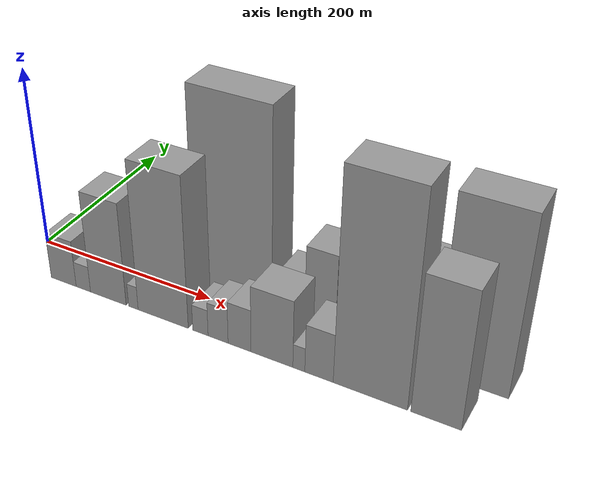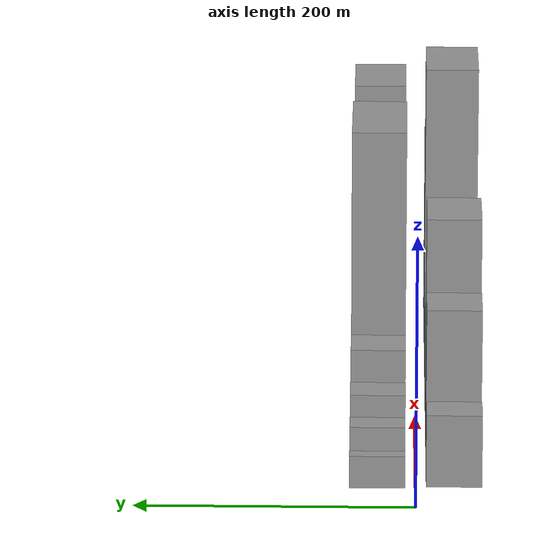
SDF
<sdf version="1.6">
 <world name="default">
  <scene>
   <sky><clouds><speed>12</speed></clouds></sky>
   <ambient>0.4 0.4 0.4 1</ambient>
   <background>0.7 0.7 0.7 1</background>
   <shadows>1</shadows>
  </scene>
  <gravity>0 0 -9.8066</gravity>
  <magnetic_field>6e-06 2.3e-05 -4.2e-05</magnetic_field>
  <physics default="0" name="default_physics" type="ode">
   <ode>
    <solver>
     <type>quick</type>
     <iters>10</iters>
     <sor>1.0</sor>
     <use_dynamic_moi_rescaling>0</use_dynamic_moi_rescaling>
    </solver>
    <constraints>
     <cfm>0</cfm>
     <erp>0.2</erp>
     <contact_max_correcting_vel>100</contact_max_correcting_vel>
     <contact_surface_layer>0.001</contact_surface_layer>
    </constraints>
   </ode>
   <max_step_size>0.004</max_step_size>
   <real_time_factor>1</real_time_factor>
   <real_time_update_rate>250</real_time_update_rate>
  </physics>
  <light name="sun" type="directional">
   <pose>0 0 10 0 0 0</pose>
   <diffuse>0.8 0.8 0.8 1</diffuse>
   <specular>0.2 0.2 0.2 1</specular>
   <attenuation>
    <range>1000</range>
    <constant>0.9</constant>
    <linear>0.01</linear>
    <quadratic>0.001</quadratic>
   </attenuation>
   <direction>-0.5 0.1 -0.9</direction>
  </light>
  <model name="building_1">
   <static>1</static>
   <pose>45.8817 27.5000 0 0.000000 0.000000 1.570796</pose>
   <link name="link">
    <pose>0 0 12.00 0 0 0</pose>
    <collision name="collision"><geometry><box><size>40.0000 11.7634 24.0000</size></box></geometry></collision>
    <visual name="visual">
     <cast_shadows>0</cast_shadows>
     <geometry><box><size>40.0000 11.7634 24.0000</size></box></geometry>
     <material>
      <script>
       <uri>model://grey_wall/materials/scripts</uri>
       <uri>model://grey_wall/materials/textures</uri>
       <name>vrc/grey_wall</name>
      </script>
     </material>
    </visual>
   </link>
  </model>
  <model name="building_2">
   <static>1</static>
   <pose>70.8837 27.5000 0 0.000000 0.000000 1.570796</pose>
   <link name="link">
    <pose>0 0 19.50 0 0 0</pose>
    <collision name="collision"><geometry><box><size>40.0000 22.2405 39.0000</size></box></geometry></collision>
    <visual name="visual">
     <cast_shadows>0</cast_shadows>
     <geometry><box><size>40.0000 22.2405 39.0000</size></box></geometry>
     <material>
      <script>
       <uri>model://grey_wall/materials/scripts</uri>
       <uri>model://grey_wall/materials/textures</uri>
       <name>vrc/grey_wall</name>
      </script>
     </material>
    </visual>
   </link>
  </model>
  <model name="building_3">
   <static>1</static>
   <pose>101.7280 27.5000 0 0.000000 0.000000 1.570796</pose>
   <link name="link">
    <pose>0 0 27.00 0 0 0</pose>
    <collision name="collision"><geometry><box><size>40.0000 29.4482 54.0000</size></box></geometry></collision>
    <visual name="visual">
     <cast_shadows>0</cast_shadows>
     <geometry><box><size>40.0000 29.4482 54.0000</size></box></geometry>
     <material>
      <script>
       <uri>model://grey_wall/materials/scripts</uri>
       <uri>model://grey_wall/materials/textures</uri>
       <name>vrc/grey_wall</name>
      </script>
     </material>
    </visual>
   </link>
  </model>
  <model name="building_4">
   <static>1</static>
   <pose>126.2470 27.5000 0 0.000000 0.000000 1.570796</pose>
   <link name="link">
    <pose>0 0 18.00 0 0 0</pose>
    <collision name="collision"><geometry><box><size>40.0000 19.5898 36.0000</size></box></geometry></collision>
    <visual name="visual">
     <cast_shadows>0</cast_shadows>
     <geometry><box><size>40.0000 19.5898 36.0000</size></box></geometry>
     <material>
      <script>
       <uri>model://grey_wall/materials/scripts</uri>
       <uri>model://grey_wall/materials/textures</uri>
       <name>vrc/grey_wall</name>
      </script>
     </material>
    </visual>
   </link>
  </model>
  <model name="building_5">
   <static>1</static>
   <pose>154.2567 27.5000 0 0.000000 0.000000 1.570796</pose>
   <link name="link">
    <pose>0 0 36.00 0 0 0</pose>
    <collision name="collision"><geometry><box><size>40.0000 36.4296 72.0000</size></box></geometry></collision>
    <visual name="visual">
     <cast_shadows>0</cast_shadows>
     <geometry><box><size>40.0000 36.4296 72.0000</size></box></geometry>
     <material>
      <script>
       <uri>model://grey_wall/materials/scripts</uri>
       <uri>model://grey_wall/materials/textures</uri>
       <name>vrc/grey_wall</name>
      </script>
     </material>
    </visual>
   </link>
  </model>
  <model name="building_6">
   <static>1</static>
   <pose>221.0093 27.5000 0 0.000000 0.000000 1.570796</pose>
   <link name="link">
    <pose>0 0 112.50 0 0 0</pose>
    <collision name="collision"><geometry><box><size>40.0000 87.0757 225.0000</size></box></geometry></collision>
    <visual name="visual">
     <cast_shadows>0</cast_shadows>
     <geometry><box><size>40.0000 87.0757 225.0000</size></box></geometry>
     <material>
      <script>
       <uri>model://grey_wall/materials/scripts</uri>
       <uri>model://grey_wall/materials/textures</uri>
       <name>vrc/grey_wall</name>
      </script>
     </material>
    </visual>
   </link>
  </model>
  <model name="building_7">
   <static>1</static>
   <pose>284.8641 27.5000 0 0.000000 0.000000 1.570796</pose>
   <link name="link">
    <pose>0 0 27.00 0 0 0</pose>
    <collision name="collision"><geometry><box><size>40.0000 28.6338 54.0000</size></box></geometry></collision>
    <visual name="visual">
     <cast_shadows>0</cast_shadows>
     <geometry><box><size>40.0000 28.6338 54.0000</size></box></geometry>
     <material>
      <script>
       <uri>model://grey_wall/materials/scripts</uri>
       <uri>model://grey_wall/materials/textures</uri>
       <name>vrc/grey_wall</name>
      </script>
     </material>
    </visual>
   </link>
  </model>
  <model name="building_8">
   <static>1</static>
   <pose>315.1698 27.5000 0 0.000000 0.000000 1.570796</pose>
   <link name="link">
    <pose>0 0 46.50 0 0 0</pose>
    <collision name="collision"><geometry><box><size>40.0000 31.9778 93.0000</size></box></geometry></collision>
    <visual name="visual">
     <cast_shadows>0</cast_shadows>
     <geometry><box><size>40.0000 31.9778 93.0000</size></box></geometry>
     <material>
      <script>
       <uri>model://grey_wall/materials/scripts</uri>
       <uri>model://grey_wall/materials/textures</uri>
       <name>vrc/grey_wall</name>
      </script>
     </material>
    </visual>
   </link>
  </model>
  <model name="building_9">
   <static>1</static>
   <pose>353.8377 27.5000 0 0.000000 0.000000 1.570796</pose>
   <link name="link">
    <pose>0 0 54.00 0 0 0</pose>
    <collision name="collision"><geometry><box><size>40.0000 33.3580 108.0000</size></box></geometry></collision>
    <visual name="visual">
     <cast_shadows>0</cast_shadows>
     <geometry><box><size>40.0000 33.3580 108.0000</size></box></geometry>
     <material>
      <script>
       <uri>model://grey_wall/materials/scripts</uri>
       <uri>model://grey_wall/materials/textures</uri>
       <name>vrc/grey_wall</name>
      </script>
     </material>
    </visual>
   </link>
  </model>
  <model name="building_10">
   <static>1</static>
   <pose>379.2483 27.5000 0 0.000000 0.000000 1.570796</pose>
   <link name="link">
    <pose>0 0 9.00 0 0 0</pose>
    <collision name="collision"><geometry><box><size>40.0000 7.4632 18.0000</size></box></geometry></collision>
    <visual name="visual">
     <cast_shadows>0</cast_shadows>
     <geometry><box><size>40.0000 7.4632 18.0000</size></box></geometry>
     <material>
      <script>
       <uri>model://grey_wall/materials/scripts</uri>
       <uri>model://grey_wall/materials/textures</uri>
       <name>vrc/grey_wall</name>
      </script>
     </material>
    </visual>
   </link>
  </model>
  <model name="building_11">
   <static>1</static>
   <pose>403.6508 27.5000 0 0.000000 0.000000 1.570796</pose>
   <link name="link">
    <pose>0 0 55.50 0 0 0</pose>
    <collision name="collision"><geometry><box><size>40.0000 41.3420 111.0000</size></box></geometry></collision>
    <visual name="visual">
     <cast_shadows>0</cast_shadows>
     <geometry><box><size>40.0000 41.3420 111.0000</size></box></geometry>
     <material>
      <script>
       <uri>model://grey_wall/materials/scripts</uri>
       <uri>model://grey_wall/materials/textures</uri>
       <name>vrc/grey_wall</name>
      </script>
     </material>
    </visual>
   </link>
  </model>
  <model name="building_12">
   <static>1</static>
   <pose>463.6004 27.5000 0 0.000000 0.000000 1.570796</pose>
   <link name="link">
    <pose>0 0 96.00 0 0 0</pose>
    <collision name="collision"><geometry><box><size>40.0000 66.5572 192.0000</size></box></geometry></collision>
    <visual name="visual">
     <cast_shadows>0</cast_shadows>
     <geometry><box><size>40.0000 66.5572 192.0000</size></box></geometry>
     <material>
      <script>
       <uri>model://grey_wall/materials/scripts</uri>
       <uri>model://grey_wall/materials/textures</uri>
       <name>vrc/grey_wall</name>
      </script>
     </material>
    </visual>
   </link>
  </model>
  <model name="building_13">
   <static>1</static>
   <pose>58.5326 -27.5000 0 0.000000 0.000000 1.570796</pose>
   <link name="link">
    <pose>0 0 27.00 0 0 0</pose>
    <collision name="collision"><geometry><box><size>40.0000 31.0651 54.0000</size></box></geometry></collision>
    <visual name="visual">
     <cast_shadows>0</cast_shadows>
     <geometry><box><size>40.0000 31.0651 54.0000</size></box></geometry>
     <material>
      <script>
       <uri>model://grey_wall/materials/scripts</uri>
       <uri>model://grey_wall/materials/textures</uri>
       <name>vrc/grey_wall</name>
      </script>
     </material>
    </visual>
   </link>
  </model>
  <model name="building_14">
   <static>1</static>
   <pose>82.8570 -27.5000 0 0.000000 0.000000 1.570796</pose>
   <link name="link">
    <pose>0 0 15.00 0 0 0</pose>
    <collision name="collision"><geometry><box><size>40.0000 17.5837 30.0000</size></box></geometry></collision>
    <visual name="visual">
     <cast_shadows>0</cast_shadows>
     <geometry><box><size>40.0000 17.5837 30.0000</size></box></geometry>
     <material>
      <script>
       <uri>model://grey_wall/materials/scripts</uri>
       <uri>model://grey_wall/materials/textures</uri>
       <name>vrc/grey_wall</name>
      </script>
     </material>
    </visual>
   </link>
  </model>
  <model name="building_15">
   <static>1</static>
   <pose>112.9578 -27.5000 0 0.000000 0.000000 1.570796</pose>
   <link name="link">
    <pose>0 0 58.50 0 0 0</pose>
    <collision name="collision"><geometry><box><size>40.0000 42.6180 117.0000</size></box></geometry></collision>
    <visual name="visual">
     <cast_shadows>0</cast_shadows>
     <geometry><box><size>40.0000 42.6180 117.0000</size></box></geometry>
     <material>
      <script>
       <uri>model://grey_wall/materials/scripts</uri>
       <uri>model://grey_wall/materials/textures</uri>
       <name>vrc/grey_wall</name>
      </script>
     </material>
    </visual>
   </link>
  </model>
  <model name="building_16">
   <static>1</static>
   <pose>142.7805 -27.5000 0 0.000000 0.000000 1.570796</pose>
   <link name="link">
    <pose>0 0 13.50 0 0 0</pose>
    <collision name="collision"><geometry><box><size>40.0000 11.0274 27.0000</size></box></geometry></collision>
    <visual name="visual">
     <cast_shadows>0</cast_shadows>
     <geometry><box><size>40.0000 11.0274 27.0000</size></box></geometry>
     <material>
      <script>
       <uri>model://grey_wall/materials/scripts</uri>
       <uri>model://grey_wall/materials/textures</uri>
       <name>vrc/grey_wall</name>
      </script>
     </material>
    </visual>
   </link>
  </model>
  <model name="building_17">
   <static>1</static>
   <pose>176.7688 -27.5000 0 0.000000 0.000000 1.570796</pose>
   <link name="link">
    <pose>0 0 84.00 0 0 0</pose>
    <collision name="collision"><geometry><box><size>40.0000 56.9493 168.0000</size></box></geometry></collision>
    <visual name="visual">
     <cast_shadows>0</cast_shadows>
     <geometry><box><size>40.0000 56.9493 168.0000</size></box></geometry>
     <material>
      <script>
       <uri>model://grey_wall/materials/scripts</uri>
       <uri>model://grey_wall/materials/textures</uri>
       <name>vrc/grey_wall</name>
      </script>
     </material>
    </visual>
   </link>
  </model>
  <model name="building_18">
   <static>1</static>
   <pose>218.6372 -27.5000 0 0.000000 0.000000 1.570796</pose>
   <link name="link">
    <pose>0 0 15.00 0 0 0</pose>
    <collision name="collision"><geometry><box><size>40.0000 16.7874 30.0000</size></box></geometry></collision>
    <visual name="visual">
     <cast_shadows>0</cast_shadows>
     <geometry><box><size>40.0000 16.7874 30.0000</size></box></geometry>
     <material>
      <script>
       <uri>model://grey_wall/materials/scripts</uri>
       <uri>model://grey_wall/materials/textures</uri>
       <name>vrc/grey_wall</name>
      </script>
     </material>
    </visual>
   </link>
  </model>
  <model name="building_19">
   <static>1</static>
   <pose>237.8213 -27.5000 0 0.000000 0.000000 1.570796</pose>
   <link name="link">
    <pose>0 0 19.50 0 0 0</pose>
    <collision name="collision"><geometry><box><size>40.0000 21.5809 39.0000</size></box></geometry></collision>
    <visual name="visual">
     <cast_shadows>0</cast_shadows>
     <geometry><box><size>40.0000 21.5809 39.0000</size></box></geometry>
     <material>
      <script>
       <uri>model://grey_wall/materials/scripts</uri>
       <uri>model://grey_wall/materials/textures</uri>
       <name>vrc/grey_wall</name>
      </script>
     </material>
    </visual>
   </link>
  </model>
  <model name="building_20">
   <static>1</static>
   <pose>260.7178 -27.5000 0 0.000000 0.000000 1.570796</pose>
   <link name="link">
    <pose>0 0 24.00 0 0 0</pose>
    <collision name="collision"><geometry><box><size>40.0000 24.2121 48.0000</size></box></geometry></collision>
    <visual name="visual">
     <cast_shadows>0</cast_shadows>
     <geometry><box><size>40.0000 24.2121 48.0000</size></box></geometry>
     <material>
      <script>
       <uri>model://grey_wall/materials/scripts</uri>
       <uri>model://grey_wall/materials/textures</uri>
       <name>vrc/grey_wall</name>
      </script>
     </material>
    </visual>
   </link>
  </model>
  <model name="building_21">
   <static>1</static>
   <pose>294.3731 -27.5000 0 0.000000 0.000000 1.570796</pose>
   <link name="link">
    <pose>0 0 37.50 0 0 0</pose>
    <collision name="collision"><geometry><box><size>40.0000 43.0985 75.0000</size></box></geometry></collision>
    <visual name="visual">
     <cast_shadows>0</cast_shadows>
     <geometry><box><size>40.0000 43.0985 75.0000</size></box></geometry>
     <material>
      <script>
       <uri>model://grey_wall/materials/scripts</uri>
       <uri>model://grey_wall/materials/textures</uri>
       <name>vrc/grey_wall</name>
      </script>
     </material>
    </visual>
   </link>
  </model>
  <model name="building_22">
   <static>1</static>
   <pose>321.9104 -27.5000 0 0.000000 0.000000 1.570796</pose>
   <link name="link">
    <pose>0 0 13.50 0 0 0</pose>
    <collision name="collision"><geometry><box><size>40.0000 11.9760 27.0000</size></box></geometry></collision>
    <visual name="visual">
     <cast_shadows>0</cast_shadows>
     <geometry><box><size>40.0000 11.9760 27.0000</size></box></geometry>
     <material>
      <script>
       <uri>model://grey_wall/materials/scripts</uri>
       <uri>model://grey_wall/materials/textures</uri>
       <name>vrc/grey_wall</name>
      </script>
     </material>
    </visual>
   </link>
  </model>
  <model name="building_23">
   <static>1</static>
   <pose>341.8908 -27.5000 0 0.000000 0.000000 1.570796</pose>
   <link name="link">
    <pose>0 0 27.00 0 0 0</pose>
    <collision name="collision"><geometry><box><size>40.0000 27.9848 54.0000</size></box></geometry></collision>
    <visual name="visual">
     <cast_shadows>0</cast_shadows>
     <geometry><box><size>40.0000 27.9848 54.0000</size></box></geometry>
     <material>
      <script>
       <uri>model://grey_wall/materials/scripts</uri>
       <uri>model://grey_wall/materials/textures</uri>
       <name>vrc/grey_wall</name>
      </script>
     </material>
    </visual>
   </link>
  </model>
  <model name="building_24">
   <static>1</static>
   <pose>390.9323 -27.5000 0 0.000000 0.000000 1.570796</pose>
   <link name="link">
    <pose>0 0 112.50 0 0 0</pose>
    <collision name="collision"><geometry><box><size>40.0000 70.0983 225.0000</size></box></geometry></collision>
    <visual name="visual">
     <cast_shadows>0</cast_shadows>
     <geometry><box><size>40.0000 70.0983 225.0000</size></box></geometry>
     <material>
      <script>
       <uri>model://grey_wall/materials/scripts</uri>
       <uri>model://grey_wall/materials/textures</uri>
       <name>vrc/grey_wall</name>
      </script>
     </material>
    </visual>
   </link>
  </model>
  <model name="building_25">
   <static>1</static>
   <pose>451.6688 -27.5000 0 0.000000 0.000000 1.570796</pose>
   <link name="link">
    <pose>0 0 73.50 0 0 0</pose>
    <collision name="collision"><geometry><box><size>40.0000 45.3747 147.0000</size></box></geometry></collision>
    <visual name="visual">
     <cast_shadows>0</cast_shadows>
     <geometry><box><size>40.0000 45.3747 147.0000</size></box></geometry>
     <material>
      <script>
       <uri>model://grey_wall/materials/scripts</uri>
       <uri>model://grey_wall/materials/textures</uri>
       <name>vrc/grey_wall</name>
      </script>
     </material>
    </visual>
   </link>
  </model>
 </world>
</sdf>
